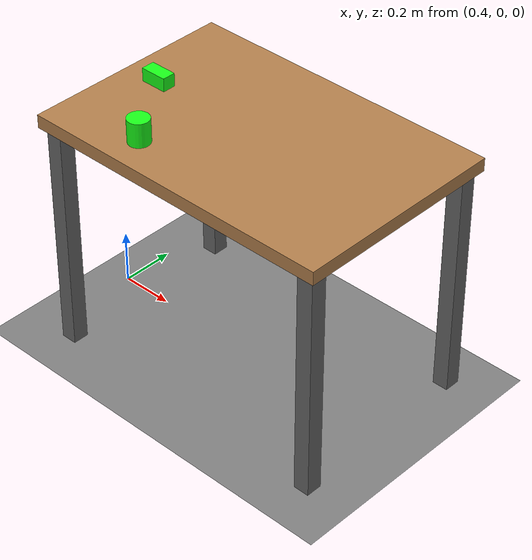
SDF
<?xml version="1.0" ?>
<!--
  Простейший world без Fuel-зависимостей (для оффлайн-запуска):
  плоский пол + выровненный стол + коробка pick_box (захват) + цилиндрический блок.
  Подробности сцены: docs/STATUS.md.
-->
<sdf version="1.6">
  <world name="cart_xarm_world_offline">

    <model name="ground_plane">
      <static>true</static>
      <link name="link">
        <collision name="collision">
          <geometry><plane><normal>0 0 1</normal><size>20 20</size></plane></geometry>
          <surface><friction><ode><mu>1.0</mu><mu2>1.0</mu2></ode></friction></surface>
        </collision>
        <visual name="visual">
          <geometry><plane><normal>0 0 1</normal><size>20 20</size></plane></geometry>
          <material><ambient>0.4 0.4 0.4 1</ambient><diffuse>0.5 0.5 0.5 1</diffuse></material>
        </visual>
      </link>
    </model>

    <!-- Освещение: рассеянный свет сцены (тени светлее), яркое солнце и
         заполняющий источник с другой стороны без теней -->
    <scene>
      <ambient>0.6 0.6 0.6 1</ambient>
      <background>0.75 0.8 0.85 1</background>
      <shadows>true</shadows>
    </scene>

    <light type="directional" name="sun">
      <cast_shadows>true</cast_shadows>
      <pose>0 0 10 0 0 0</pose>
      <diffuse>1.0 1.0 1.0 1</diffuse>
      <specular>0.3 0.3 0.3 1</specular>
      <direction>-0.5 0.1 -0.9</direction>
    </light>

    <light type="directional" name="fill">
      <cast_shadows>false</cast_shadows>
      <pose>0 0 10 0 0 0</pose>
      <diffuse>0.5 0.5 0.5 1</diffuse>
      <specular>0.1 0.1 0.1 1</specular>
      <direction>0.6 -0.3 -0.7</direction>
    </light>

    <model name="table_simple">
      <static>true</static>
      <pose>1.05 0.0 0 0 0 0</pose>
      <link name="link">
        <!-- столешница: центр z=0.90, толщина 0.05 => верх 0.925 -->
        <visual name="top_visual">
          <pose>0 0 0.9 0 0 0</pose>
          <geometry><box><size>1.2 0.8 0.05</size></box></geometry>
          <material><ambient>0.6 0.4 0.2 1</ambient><diffuse>0.7 0.5 0.3 1</diffuse></material>
        </visual>
        <collision name="top_collision">
          <pose>0 0 0.9 0 0 0</pose>
          <geometry><box><size>1.2 0.8 0.05</size></box></geometry>
          <surface><friction><ode><mu>1.0</mu><mu2>1.0</mu2></ode></friction></surface>
        </collision>
        <!-- 4 ножки 0.06 x 0.06, от пола (z=0) до низа столешницы (z=0.875) -->
        <visual name="leg_fl_visual">
          <pose>0.55 0.35 0.4375 0 0 0</pose>
          <geometry><box><size>0.06 0.06 0.875</size></box></geometry>
          <material><ambient>0.3 0.3 0.3 1</ambient><diffuse>0.4 0.4 0.4 1</diffuse></material>
        </visual>
        <collision name="leg_fl_collision">
          <pose>0.55 0.35 0.4375 0 0 0</pose>
          <geometry><box><size>0.06 0.06 0.875</size></box></geometry>
        </collision>
        <visual name="leg_fr_visual">
          <pose>0.55 -0.35 0.4375 0 0 0</pose>
          <geometry><box><size>0.06 0.06 0.875</size></box></geometry>
          <material><ambient>0.3 0.3 0.3 1</ambient><diffuse>0.4 0.4 0.4 1</diffuse></material>
        </visual>
        <collision name="leg_fr_collision">
          <pose>0.55 -0.35 0.4375 0 0 0</pose>
          <geometry><box><size>0.06 0.06 0.875</size></box></geometry>
        </collision>
        <visual name="leg_bl_visual">
          <pose>-0.55 0.35 0.4375 0 0 0</pose>
          <geometry><box><size>0.06 0.06 0.875</size></box></geometry>
          <material><ambient>0.3 0.3 0.3 1</ambient><diffuse>0.4 0.4 0.4 1</diffuse></material>
        </visual>
        <collision name="leg_bl_collision">
          <pose>-0.55 0.35 0.4375 0 0 0</pose>
          <geometry><box><size>0.06 0.06 0.875</size></box></geometry>
        </collision>
        <visual name="leg_br_visual">
          <pose>-0.55 -0.35 0.4375 0 0 0</pose>
          <geometry><box><size>0.06 0.06 0.875</size></box></geometry>
          <material><ambient>0.3 0.3 0.3 1</ambient><diffuse>0.4 0.4 0.4 1</diffuse></material>
        </visual>
        <collision name="leg_br_collision">
          <pose>-0.55 -0.35 0.4375 0 0 0</pose>
          <geometry><box><size>0.06 0.06 0.875</size></box></geometry>
        </collision>
      </link>
    </model>

    <model name="pick_box">
      <pose>0.60 0.0 0.9505 0 0 0</pose>
      <!-- Публикует ТОЛЬКО позу модели (не всех звеньев мира) 10 Гц: этим пользуется
           vacuum_gripper_sim для проверки касания. Топик:
           /model/pick_box/pose (Pose_V) -->
      <plugin filename="gz-sim-pose-publisher-system" name="gz::sim::systems::PosePublisher">
        <publish_model_pose>true</publish_model_pose>
        <publish_link_pose>false</publish_link_pose>
        <publish_collision_pose>false</publish_collision_pose>
        <publish_visual_pose>false</publish_visual_pose>
        <publish_sensor_pose>false</publish_sensor_pose>
        <use_pose_vector_msg>true</use_pose_vector_msg>
        <update_frequency>10</update_frequency>
      </plugin>
      <link name="link">
        <inertial>
          <mass>0.1</mass>
          <inertia>
            <ixx>4.1667e-5</ixx><iyy>1.0417e-4</iyy><izz>1.0417e-4</izz>
            <ixy>0</ixy><ixz>0</ixz><iyz>0</iyz>
          </inertia>
        </inertial>
        <visual name="visual">
          <geometry><box><size>0.10 0.05 0.05</size></box></geometry>
          <material><ambient>0.1 1.0 0.1 1</ambient><diffuse>0.1 1.0 0.1 1</diffuse><emissive>0.0 0.35 0.0 1</emissive></material>
        </visual>
        <collision name="collision">
          <geometry><box><size>0.10 0.05 0.05</size></box></geometry>
          <surface><friction><ode><mu>1.0</mu><mu2>1.0</mu2></ode></friction></surface>
        </collision>
      </link>
    </model>

    <!-- Цилиндрический блок (r=0.04, h=0.09) — прежний объект, теперь стоит НА столешнице
         (раньше парил на 5 см над ней) сбоку от pick_box; static. -->
    <model name="cylinder_block">
      <static>true</static>
      <pose>0.80 -0.28 0.9705 0 0 0</pose>
      <link name="link">
        <visual name="visual">
          <geometry><cylinder><radius>0.04</radius><length>0.09</length></cylinder></geometry>
          <material><ambient>0.1 1.0 0.1 1</ambient><diffuse>0.1 1.0 0.1 1</diffuse><emissive>0.0 0.35 0.0 1</emissive></material>
        </visual>
        <collision name="collision">
          <geometry><cylinder><radius>0.04</radius><length>0.09</length></cylinder></geometry>
        </collision>
      </link>
    </model>

    <physics name="1ms" type="ode">
      <max_step_size>0.001</max_step_size>
      <real_time_factor>1</real_time_factor>
      <real_time_update_rate>1000</real_time_update_rate>
    </physics>

    <plugin filename="gz-sim-physics-system" name="gz::sim::systems::Physics"/>
    <plugin filename="gz-sim-user-commands-system" name="gz::sim::systems::UserCommands"/>
    <plugin filename="gz-sim-scene-broadcaster-system" name="gz::sim::systems::SceneBroadcaster"/>
    <!-- Сенсоры (камера гриппера); /clock публикует сам gz sim, не этот плагин -->
    <plugin filename="gz-sim-sensors-system" name="gz::sim::systems::Sensors">
      <render_engine>ogre2</render_engine>
    </plugin>

  </world>
</sdf>
